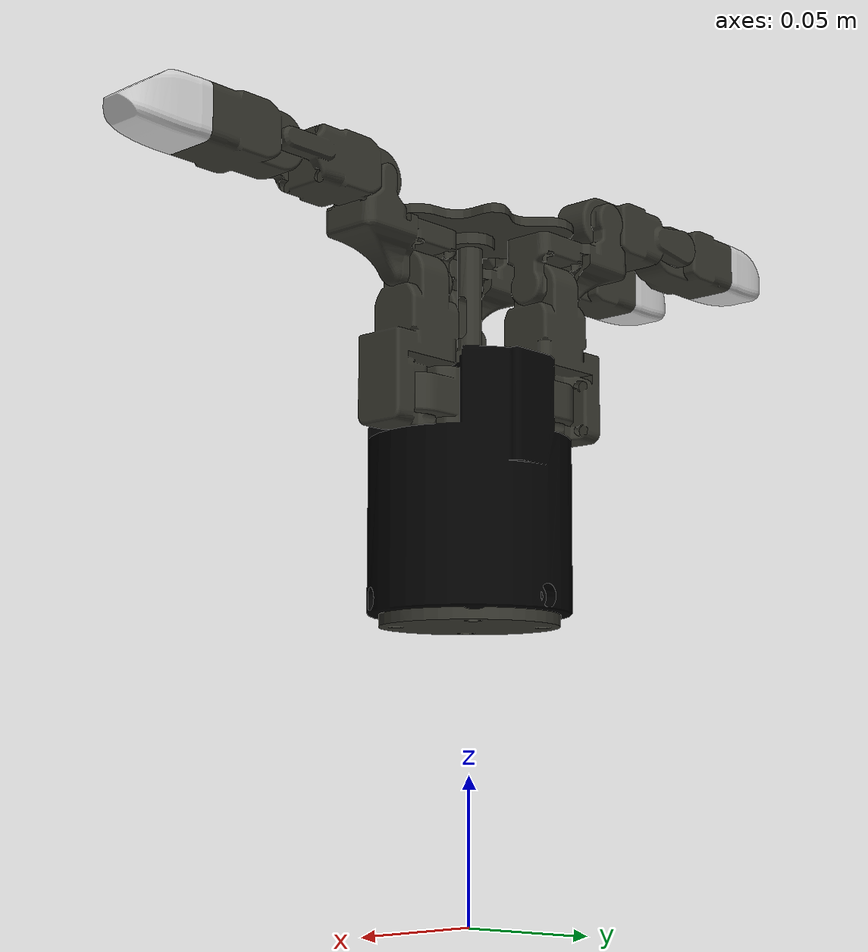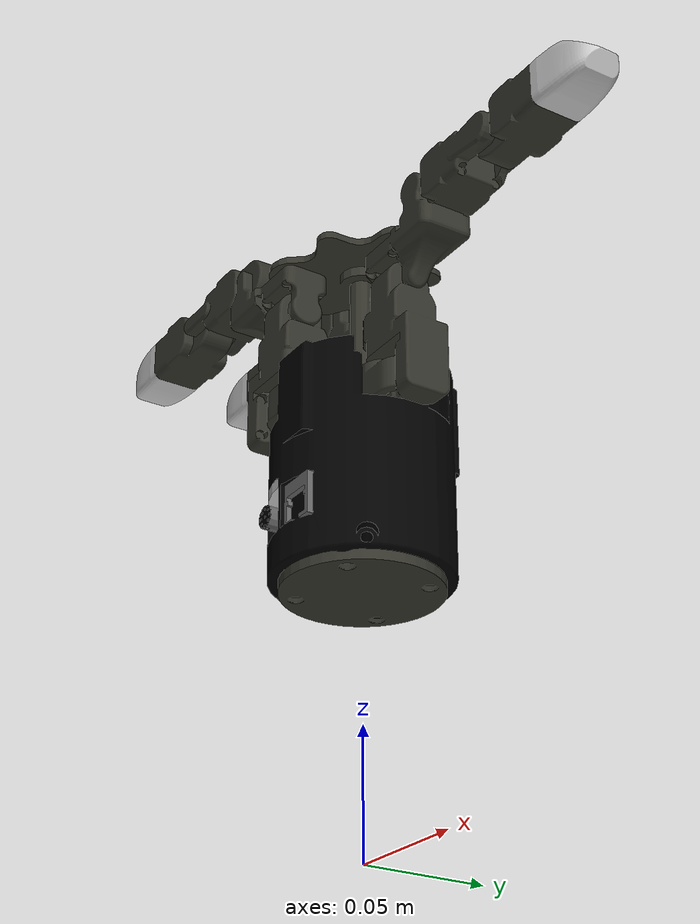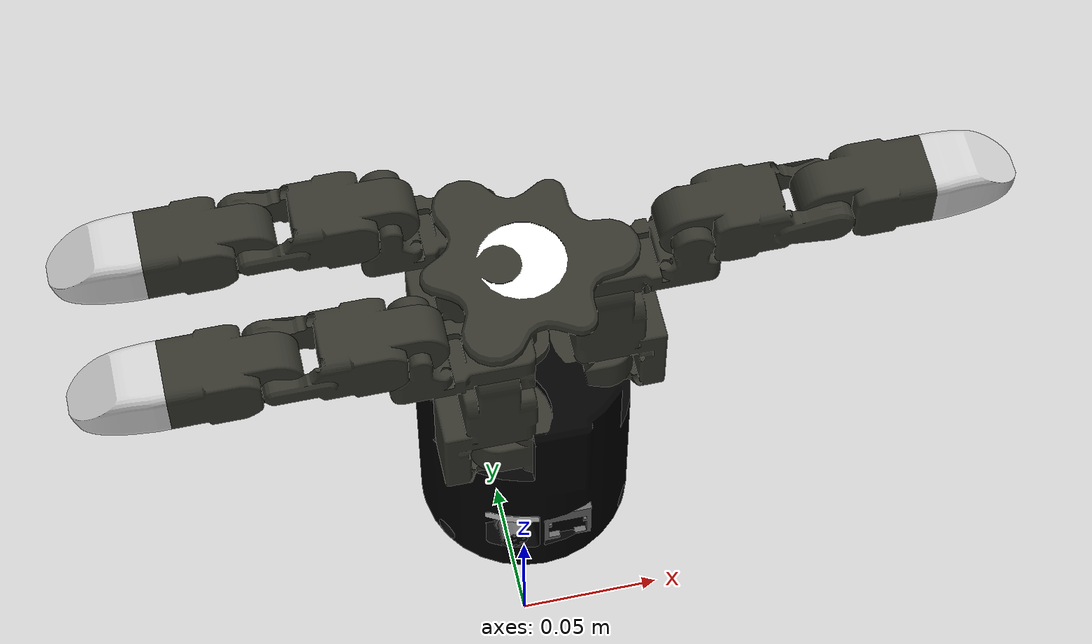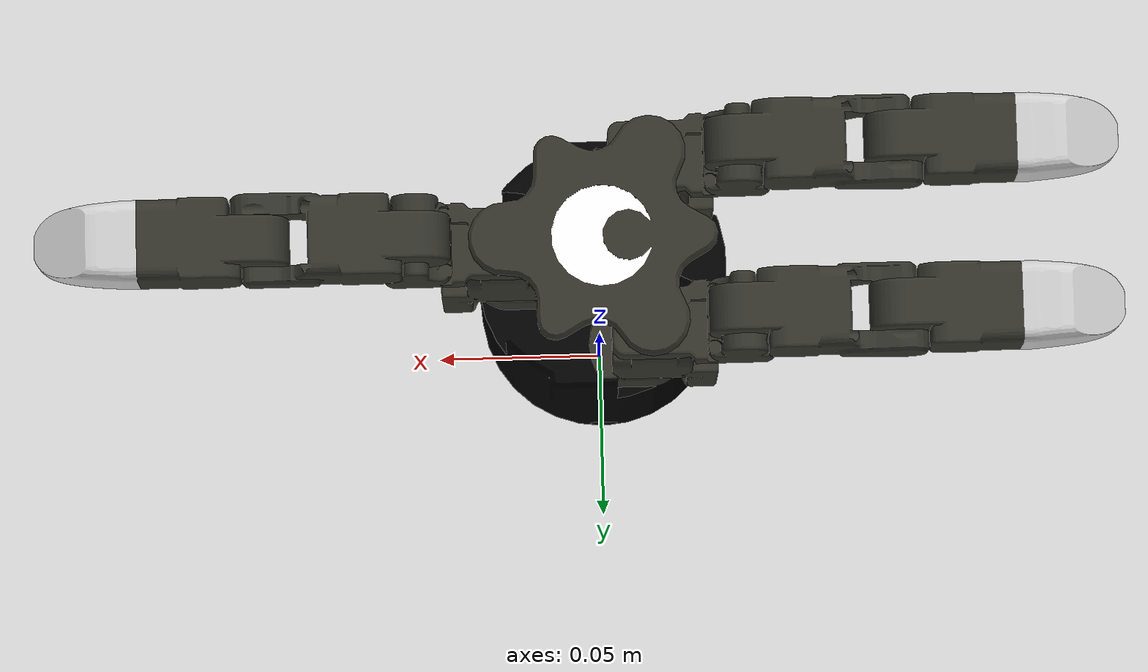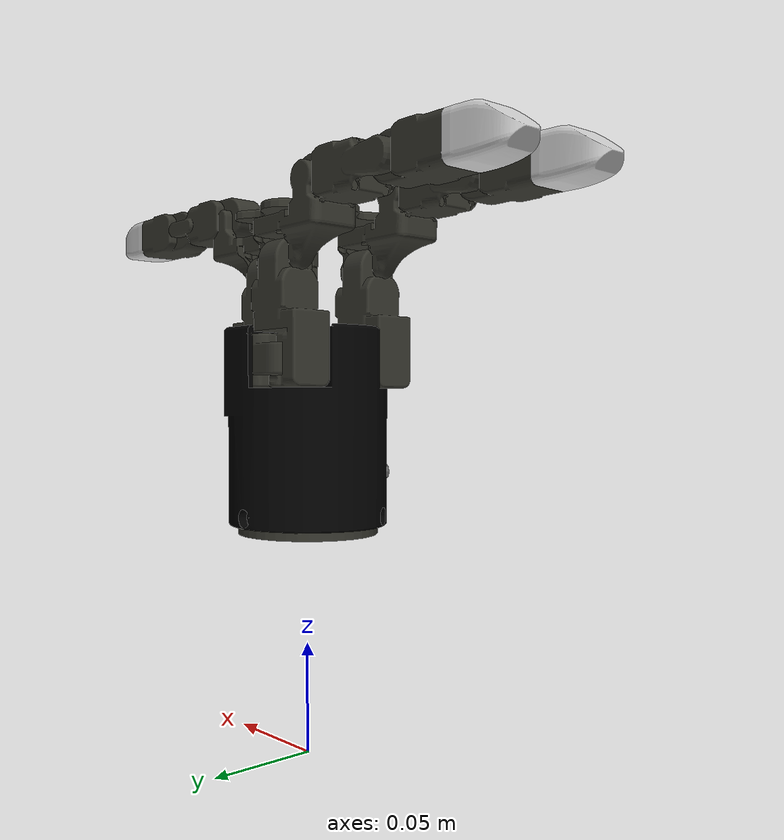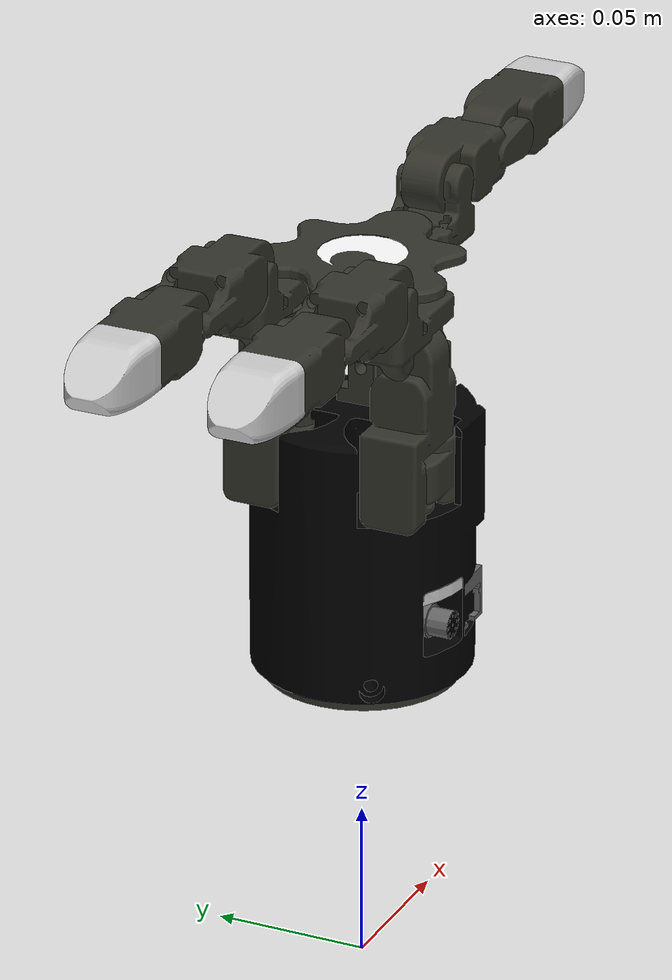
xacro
<?xml version="1.0"?>

<robot name="delto_3f" xmlns:xacro="http://www.ros.org/wiki/xacro">

    <xacro:include filename="$(find dg_description)/urdf/dg3f_m.xacro" />

    <link name="world" />

    <joint name="world_to_base_fixed" type="fixed">
        <parent link="world" />
        <child link="base_link" />
        <origin xyz="0 0 0.1" rpy="0 0 0" />
    </joint>

    <ros2_control name="GazeboSimSystem" type="system">
        <hardware>
            <plugin>ign_ros2_control/IgnitionSystem</plugin>
        </hardware>

        <!-- Finger 1 joints -->
        <joint name="j_dg_1_1">
            <command_interface name="position">
                <param name="min_position">-3.14</param>
                <param name="max_position">3.14</param>
            </command_interface>
            <state_interface name="position">
                <param name="initial_position">0.0</param>
            </state_interface>
            <state_interface name="velocity" />
            <state_interface name="effort" />
        </joint>

        <joint name="j_dg_1_2">
            <command_interface name="position">
                <param name="min_position">-3.14</param>
                <param name="max_position">3.14</param>
            </command_interface>
            <state_interface name="position">
                <param name="initial_position">0.0</param>
            </state_interface>
            <state_interface name="velocity" />
            <state_interface name="effort" />
        </joint>

        <joint name="j_dg_1_3">
            <command_interface name="position">
                <param name="min_position">-3.14</param>
                <param name="max_position">3.14</param>
            </command_interface>
            <state_interface name="position">
                <param name="initial_position">0.0</param>
            </state_interface>
            <state_interface name="velocity" />
            <state_interface name="effort" />
        </joint>

        <joint name="j_dg_1_4">
            <command_interface name="position">
                <param name="min_position">-3.14</param>
                <param name="max_position">3.14</param>
            </command_interface>
            <state_interface name="position">
                <param name="initial_position">0.0</param>
            </state_interface>
            <state_interface name="velocity" />
            <state_interface name="effort" />
        </joint>

        <!-- Finger 2 joints -->
        <joint name="j_dg_2_1">
            <command_interface name="position">
                <param name="min_position">-0.5</param>
                <param name="max_position">0.5</param>
            </command_interface>
            <state_interface name="position">
                <param name="initial_position">0.0</param>
            </state_interface>
            <state_interface name="velocity" />
            <state_interface name="effort" />
        </joint>

        <joint name="j_dg_2_2">
            <command_interface name="position">
                <param name="min_position">-0.5</param>
                <param name="max_position">0.5</param>
            </command_interface>
            <state_interface name="position">
                <param name="initial_position">0.0</param>
            </state_interface>
            <state_interface name="velocity" />
            <state_interface name="effort" />
        </joint>

        <joint name="j_dg_2_3">
            <command_interface name="position">
                <param name="min_position">-0.5</param>
                <param name="max_position">0.5</param>
            </command_interface>
            <state_interface name="position">
                <param name="initial_position">0.0</param>
            </state_interface>
            <state_interface name="velocity" />
            <state_interface name="effort" />
        </joint>

        <joint name="j_dg_2_4">
            <command_interface name="position">
                <param name="min_position">-0.5</param>
                <param name="max_position">0.5</param>
            </command_interface>
            <state_interface name="position">
                <param name="initial_position">0.0</param>
            </state_interface>
            <state_interface name="velocity" />
            <state_interface name="effort" />
        </joint>

        <!-- Finger 3 joints -->
        <joint name="j_dg_3_1">
            <command_interface name="position">
                <param name="min_position">-0.5</param>
                <param name="max_position">0.5</param>
            </command_interface>
            <state_interface name="position">
                <param name="initial_position">0.0</param>
            </state_interface>
            <state_interface name="velocity" />
            <state_interface name="effort" />
        </joint>

        <joint name="j_dg_3_2">
            <command_interface name="position">
                <param name="min_position">-0.5</param>
                <param name="max_position">0.5</param>
            </command_interface>
            <state_interface name="position">
                <param name="initial_position">0.0</param>
            </state_interface>
            <state_interface name="velocity" />
            <state_interface name="effort" />
        </joint>

        <joint name="j_dg_3_3">
            <command_interface name="position">
                <param name="min_position">-0.5</param>
                <param name="max_position">0.5</param>
            </command_interface>
            <state_interface name="position">
                <param name="initial_position">0.0</param>
            </state_interface>
            <state_interface name="velocity" />
            <state_interface name="effort" />
        </joint>

        <joint name="j_dg_3_4">
            <command_interface name="position">
                <param name="min_position">-0.5</param>
                <param name="max_position">0.5</param>
            </command_interface>
            <state_interface name="position">
                <param name="initial_position">0.0</param>
            </state_interface>
            <state_interface name="velocity" />
            <state_interface name="effort" />
        </joint>

    </ros2_control>

    <gazebo>

        <gravity>false</gravity>
        <physics type="dart">  <!-- dart 엔진이 일반적으로 더 빠름 -->
            <max_step_size>0.0</max_step_size>  <!-- 스텝 사이즈 증가 -->
            <real_time_factor>1.0</real_time_factor>
            <real_time_update_rate>250</real_time_update_rate>  <!-- 업데이트 레이트 감소 -->
            <max_contacts>5</max_contacts>  <!-- 접촉점 수 감소 -->

            <!-- 추가 최적화 설정 -->
            <solver>
                <type>quick</type>
                <iters>10</iters>  <!-- 반복 횟수 감소 -->
                <precon_iters>0</precon_iters>
                <sor>1.0</sor>
            </solver>
        </physics>

        <self_collide>0</self_collide>

        <!-- 렌더링 최적화 -->
        <visual>
            <shadows>false</shadows>
            <grid>false</grid>
        </visual>

        <collision_detector>ode</collision_detector>
        <constraints>
            <contact_max_correcting_vel>0.0</contact_max_correcting_vel>
            <cfm>0.0</cfm>
            <erp>0.0</erp>
        </constraints>

        <plugin name="ign_ros2_control::IgnitionROS2ControlPlugin"
            filename="libign_ros2_control-system.so">
            <robot_param_node>robot_state_publisher</robot_param_node>
            <robot_param>robot_description</robot_param>
            <parameters>$(find dg3f_m_gz)/config/dg3f_m_gz_controller.yaml</parameters>
            <ros>
                <namespace>/</namespace>
            </ros>
        </plugin>

    </gazebo>

</robot>

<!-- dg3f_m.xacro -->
<!--
    dg3f_m.urdf
    Licensed under the BSD-3-Clause
    Copyright (c) 2019-2025 Tesollo Inc.
    See LICENSE file for details.

    Reference:
    * https://tesollo.com/dg-3f/
-->

<robot name="dg3f_m">

  <link name="base_link" />

  <joint name="base_joint" type="fixed">
    <origin xyz="0 0 0" rpy="0 0 0" />
    <parent link="base_link" />
    <child link="l_dg_mount" />
  </joint>

  <link name="l_dg_mount">
    <inertial>
      <mass value="0.035" />
    </inertial>
    <visual>
      <geometry>
        <mesh filename="file://$(find dg_description)/meshes/dg3f_m/visual/l_dg_mount.dae"/>
      </geometry>
    </visual>
    <collision>
      <geometry>
        <mesh filename="file://$(find dg_description)/meshes/dg3f_m/collision/l_dg_mount_c.STL"/>
      </geometry>
    </collision>
  </link>
  <link name="l_dg_base">
    <inertial>
      <origin xyz="0.00043337 0.00027389 0.044909" rpy="0 0 0" />
      <mass value="0.451" />
      <inertia ixx="0.00074905" ixy="1.3406E-06" ixz="6.2559E-06" iyy="0.00076541" iyz="3.8906E-06" izz="0.00042544" />
    </inertial>
    <visual>
      <origin xyz="0 0 0" rpy="0 0 0" />
      <geometry>
        <mesh filename="file://$(find dg_description)/meshes/dg3f_m/visual/l_dg_base.dae" />
      </geometry>
    </visual>
    <collision>
      <origin xyz="0 0 0" rpy="0 0 0" />
      <geometry>
        <mesh filename="file://$(find dg_description)/meshes/dg3f_m/collision/l_dg_base_c.STL" />
      </geometry>
    </collision>
  </link>
  <joint name="j_dg_dg_base" type="fixed">
    <parent link="l_dg_mount"/>
    <child link="l_dg_base"/>
    <origin rpy="0 0 0" xyz="0 0 0.004"/>
  </joint>
<!--finger1-->
<link name="l_dg_1_1">
    <inertial>
      <origin xyz="0.0039774 -8.829E-09 0.020057" rpy="0 0 0" />
      <mass value="0.0493" />
      <inertia ixx="1.3247E-05" ixy="1.7768E-12" ixz="2.91E-06" iyy="1.5031E-05" iyz="-6.8008E-12" izz="4.5216E-06" />
    </inertial>
    <visual>
      <origin xyz="0 0 0" rpy="0 0 0" />
      <geometry>
        <mesh filename="file://$(find dg_description)/meshes/dg3f_m/visual/l_1_1.dae" />
      </geometry>
    </visual>
    <collision>
      <origin xyz="0 0 0" rpy="0 0 0" />
      <geometry>
        <mesh filename="file://$(find dg_description)/meshes/dg3f_m/collision/l_1_1_c.STL" />
      </geometry>
    </collision>
  </link>
  <joint name="j_dg_1_1" type="revolute">
    <origin xyz="0.026558 0 0.0712" rpy="0 0 0" />
    <parent link="l_dg_base" />
    <child link="l_dg_1_1" />
    <axis xyz="0 0 1" />
    <limit lower="-1.5707963267948966" upper="1.5707963267948966" effort="7.644" velocity="3.141592653589793" />
  </joint>

  <link name="l_dg_1_2">
    <inertial>
      <origin xyz="0.013085 -0.00032847 0.013274" rpy="0 0 0" />
      <mass value="0.0191" />
      <inertia ixx="2.4921E-06" ixy="1.1229E-07" ixz="-1.0064E-06" iyy="6.5468E-06" iyz="1.5916E-07" izz="6.2269E-06" />
    </inertial>
    <visual>
      <origin xyz="0 0 0" rpy="0 0 0" />
      <geometry>
        <mesh filename="file://$(find dg_description)/meshes/dg3f_m/visual/l_1_2.dae" />
      </geometry>
    </visual>
    <collision>
      <origin xyz="0 0 0" rpy="0 0 0" />
      <geometry>
        <mesh filename="file://$(find dg_description)/meshes/dg3f_m/collision/l_1_2_c.STL" />
      </geometry>
    </collision>
  </link>
  <joint name="j_dg_1_2" type="revolute">
    <origin xyz="0 0 0.0405" rpy="0 0 0" />
    <parent link="l_dg_1_1" />
    <child link="l_dg_1_2" />
    <axis xyz="1 0 0" />
    <limit lower="-1.5707963267948966" upper="1.5707963267948966" effort="7.644" velocity="3.141592653589793" />
  </joint>

  <link name="l_dg_1_3">
    <inertial>
      <origin xyz="0.015926 -0.0001838 -1.5688E-05" rpy="0 0 0" />
      <mass value="0.04535" />
      <inertia ixx="2.7201E-06" ixy="5.68E-07" ixz="1.3288E-08" iyy="7.7224E-06" iyz="-3.8255E-11" izz="8.3935E-06" />
    </inertial>
    <visual>
      <origin xyz="0 0 0" rpy="0 0 0" />
      <geometry>
        <mesh filename="file://$(find dg_description)/meshes/dg3f_m/visual/l_1_3.dae" />
      </geometry>
    </visual>
    <collision>
      <origin xyz="0 0 0" rpy="0 0 0" />
      <geometry>
        <mesh filename="file://$(find dg_description)/meshes/dg3f_m/collision/l_1_3_c.STL" />
      </geometry>
    </collision>
  </link>
  <joint name="j_dg_1_3" type="revolute">
    <origin xyz="0.0242 0 0.029" rpy="0 0 0" />
    <parent link="l_dg_1_2" />
    <child link="l_dg_1_3" />
    <axis xyz="0 -1 0" />
    <limit lower="-0.0" upper="2.8099800957108707" effort="7.644" velocity="3.141592653589793" />
  </joint>

  <link name="l_dg_1_4">
    <inertial>
      <origin xyz="0.013887 0.00026201 -4.6519E-10" rpy="0 0 0" />
      <mass value="0.0408" />
      <inertia ixx="2.3785E-06" ixy="7.7437E-08" ixz="-4.9155E-14" iyy="3.5656E-06" iyz="1.1628E-12" izz="3.8056E-06" />
    </inertial>
    <visual>
      <origin xyz="0 0 0" rpy="0 0 0" />
      <geometry>
        <mesh filename="file://$(find dg_description)/meshes/dg3f_m/visual/l_1_4.dae" />
      </geometry>
    </visual>
    <collision>
      <origin xyz="0 0 0" rpy="0 0 0" />
      <geometry>
        <mesh filename="file://$(find dg_description)/meshes/dg3f_m/collision/l_1_4_c.STL" />
      </geometry>
    </collision>
  </link>
  <joint name="j_dg_1_4" type="revolute">
    <origin xyz="0.0434 0 0" rpy="0 0 0" />
    <parent link="l_dg_1_3" />
    <child link="l_dg_1_4" />
    <axis xyz="0 -1 0" />
    <limit lower="-1.5707963267948966" upper="1.8675022996339325" effort="7.644" velocity="3.141592653589793" />
  </joint>

  <link name="l_dg_1_tip">
    <inertial>
      <origin xyz="0.010984 -8.1442E-09 -0.00048894" rpy="0 0 0" />
      <mass value="0.0172" />
      <inertia ixx="1.1855E-06" ixy="5.5892E-12" ixz="9.3654E-08" iyy="1.439E-06" iyz="-1.6025E-11" izz="1.6355E-06" />
    </inertial>
    <visual>
      <origin xyz="0 0 0" rpy="0 0 0" />
      <geometry>
        <mesh filename="file://$(find dg_description)/meshes/dg3f_m/visual/l_1_tip.dae" />
      </geometry>
    </visual>
    <collision>
      <origin xyz="0 0 0" rpy="0 0 0" />
      <geometry>
        <mesh filename="file://$(find dg_description)/meshes/dg3f_m/collision/l_1_tip_c.STL" />
      </geometry>
    </collision>
  </link>
  <joint name="j_dg_1_tip" type="fixed">
    <origin xyz="0.0313 0 0" rpy="0 0 0" />
    <parent link="l_dg_1_4" />
    <child link="l_dg_1_tip" />
  </joint>
  <!--finger2-->
  <link name="l_dg_2_1">
    <inertial>
      <origin xyz="-0.0039774 8.829E-09 0.020057" rpy="0 0 0" />
      <mass value="0.0493" />
      <inertia ixx="1.3247E-05" ixy="1.7768E-12" ixz="-2.91E-06" iyy="1.5031E-05" iyz="6.8008E-12" izz="4.5216E-06" />
    </inertial>
    <visual>
      <origin xyz="0 0 0" rpy="0 0 0" />
      <geometry>
        <mesh filename="file://$(find dg_description)/meshes/dg3f_m/visual/l_23_1.dae" />
      </geometry>
    </visual>
    <collision>
      <origin xyz="0 0 0" rpy="0 0 0" />
      <geometry>
        <mesh filename="file://$(find dg_description)/meshes/dg3f_m/collision/l_23_1_c.STL" />
      </geometry>
    </collision>
  </link>
  <joint name="j_dg_2_1" type="revolute">
    <origin xyz="-0.013279 0.023 0.0712" rpy="0 0 0" />
    <parent link="l_dg_base" />
    <child link="l_dg_2_1" />
    <axis xyz="0 0 1" />
    <limit lower="-2.129301687433082" upper="1.5707963267948966" effort="7.644" velocity="3.141592653589793" />
  </joint>

  <link name="l_dg_2_2">
    <inertial>
      <origin xyz="-0.013085 0.00032847 0.013274" rpy="0 0 0" />
      <mass value="0.0191" />
      <inertia ixx="2.4921E-06" ixy="1.1229E-07" ixz="1.0064E-06" iyy="6.5468E-06" iyz="-1.5916E-07" izz="6.2269E-06" />
    </inertial>
    <visual>
      <origin xyz="0 0 0" rpy="0 0 0" />
      <geometry>
        <mesh filename="file://$(find dg_description)/meshes/dg3f_m/visual/l_23_2.dae" />
      </geometry>
    </visual>
    <collision>
      <origin xyz="0 0 0" rpy="0 0 0" />
      <geometry>
        <mesh filename="file://$(find dg_description)/meshes/dg3f_m/collision/l_23_2_c.STL" />
      </geometry>
    </collision>
  </link>
  <joint name="j_dg_2_2" type="revolute">
    <origin xyz="0 0 0.0405" rpy="0 0 0" />
    <parent link="l_dg_2_1" />
    <child link="l_dg_2_2" />
    <axis xyz="-1 0 0" />
    <limit lower="-1.5707963267948966" upper="1.5707963267948966" effort="7.644" velocity="3.141592653589793" />
  </joint>

  <link name="l_dg_2_3">
    <inertial>
      <origin xyz="-0.0159258962872331 0.000183796044363631 -1.56883420763254E-05" rpy="0 0 0" />
      <mass value="0.04535" />
      <inertia ixx="2.72014634088682E-06" ixy="5.67998480575708E-07" ixz="-1.32884157040829E-08" iyy="7.72244376203872E-06" iyz="3.82553595666275E-11" izz="8.39345564298784E-06" />
    </inertial>
    <visual>
      <origin xyz="0 0 0" rpy="0 0 0" />
      <geometry>
        <mesh filename="file://$(find dg_description)/meshes/dg3f_m/visual/l_23_3.dae" />
      </geometry>
    </visual>
    <collision>
      <origin xyz="0 0 0" rpy="0 0 0" />
      <geometry>
        <mesh filename="file://$(find dg_description)/meshes/dg3f_m/collision/l_23_3_c.STL" />
      </geometry>
    </collision>
  </link>
  <joint name="j_dg_2_3" type="revolute">
    <origin xyz="-0.0242 0 0.029" rpy="0 0 0" />
    <parent link="l_dg_2_2" />
    <child link="l_dg_2_3" />
    <axis xyz="0 1 0" />
    <limit lower="-0.0" upper="2.8099800957108707" effort="7.644" velocity="3.141592653589793" />
  </joint>

  <link name="l_dg_2_4">
    <inertial>
      <origin xyz="-0.013887 -0.00026201 -4.6519E-10" rpy="0 0 0" />
      <mass value="0.0408" />
      <inertia ixx="2.3785E-06" ixy="7.7437E-08" ixz="4.9155E-14" iyy="3.5656E-06" iyz="-1.1628E-12" izz="3.8056E-06" />
    </inertial>
    <visual>
      <origin xyz="0 0 0" rpy="0 0 0" />
      <geometry>
        <mesh filename="file://$(find dg_description)/meshes/dg3f_m/visual/l_23_4.dae" />
      </geometry>
    </visual>
    <collision>
      <origin xyz="0 0 0" rpy="0 0 0" />
      <geometry>
        <mesh filename="file://$(find dg_description)/meshes/dg3f_m/collision/l_23_4_c.STL" />
      </geometry>
    </collision>
  </link>
  <joint name="j_dg_2_4" type="revolute">
    <origin xyz="-0.0434 0 0" rpy="0 0 0" />
    <parent link="l_dg_2_3" />
    <child link="l_dg_2_4" />
    <axis xyz="0 1 0" />
    <limit lower="-1.5707963267948966" upper="1.8675022996339325" effort="7.644" velocity="3.141592653589793" />
  </joint>

  <link name="l_dg_2_tip">
    <inertial>
      <origin xyz="-0.010984 -1.7412E-08 -0.00048893" rpy="0 0 0" />
      <mass value="0.0172" />
      <inertia ixx="1.1855E-06" ixy="-2.6029E-12" ixz="-9.3657E-08" iyy="1.439E-06" iyz="1.8278E-11" izz="1.6355E-06" />
    </inertial>
    <visual>
      <origin xyz="0 0 0" rpy="0 0 0" />
      <geometry>
        <mesh filename="file://$(find dg_description)/meshes/dg3f_m/visual/l_23_tip.dae" />
      </geometry>
    </visual>
    <collision>
      <origin xyz="0 0 0" rpy="0 0 0" />
      <geometry>
        <mesh filename="file://$(find dg_description)/meshes/dg3f_m/collision/l_23_tip_c.STL" />
      </geometry>
    </collision>
  </link>
  <joint name="j_dg_2_tip" type="fixed">
    <origin xyz="-0.0313 0 0" rpy="0 0 0" />
    <parent link="l_dg_2_4" />
    <child link="l_dg_2_tip" />
  </joint>
  <!--finger3-->
  <link name="l_dg_3_1">
    <inertial>
      <origin xyz="-0.0039774 8.829E-09 0.020057" rpy="0 0 0" />
      <mass value="0.0493" />
      <inertia ixx="1.3247E-05" ixy="1.7768E-12" ixz="-2.91E-06" iyy="1.5031E-05" iyz="6.8008E-12" izz="4.5216E-06" />
    </inertial>
    <visual>
      <origin xyz="0 0 0" rpy="0 0 0" />
      <geometry>
        <mesh filename="file://$(find dg_description)/meshes/dg3f_m/visual/l_23_1.dae" />
      </geometry>
    </visual>
    <collision>
      <origin xyz="0 0 0" rpy="0 0 0" />
      <geometry>
        <mesh filename="file://$(find dg_description)/meshes/dg3f_m/collision/l_23_1_c.STL" />
      </geometry>
    </collision>
  </link>
  <joint name="j_dg_3_1" type="revolute">
    <origin xyz="-0.013279 -0.023 0.0712" rpy="0 0 0" />
    <parent link="l_dg_base" />
    <child link="l_dg_3_1" />
    <axis xyz="0 0 1" />
    <limit lower="-1.5707963267948966" upper="2.129301687433082" effort="7.644" velocity="3.141592653589793" />
  </joint>

  <link name="l_dg_3_2">
    <inertial>
      <origin xyz="-0.013085 0.00032847 0.013274" rpy="0 0 0" />
      <mass value="0.0191" />
      <inertia ixx="2.4921E-06" ixy="1.1229E-07" ixz="1.0064E-06" iyy="6.5468E-06" iyz="-1.5916E-07" izz="6.2269E-06" />
    </inertial>
    <visual>
      <origin xyz="0 0 0" rpy="0 0 0" />
      <geometry>
        <mesh filename="file://$(find dg_description)/meshes/dg3f_m/visual/l_23_2.dae" />
      </geometry>
    </visual>
    <collision>
      <origin xyz="0 0 0" rpy="0 0 0" />
      <geometry>
        <mesh filename="file://$(find dg_description)/meshes/dg3f_m/collision/l_23_2_c.STL" />
      </geometry>
    </collision>
  </link>
  <joint name="j_dg_3_2" type="revolute">
    <origin xyz="0 0 0.0405" rpy="0 0 0" />
    <parent link="l_dg_3_1" />
    <child link="l_dg_3_2" />
    <axis xyz="-1 0 0" />
    <limit lower="-1.5707963267948966" upper="1.5707963267948966" effort="7.644" velocity="3.141592653589793" />
  </joint>

  <link name="l_dg_3_3">
    <inertial>
      <origin xyz="-0.0159258962872331 0.000183796044363631 -1.56883420763254E-05" rpy="0 0 0" />
      <mass value="0.04535" />
      <inertia ixx="2.72014634088682E-06" ixy="5.67998480575708E-07" ixz="-1.32884157040829E-08" iyy="7.72244376203872E-06" iyz="3.82553595666275E-11" izz="8.39345564298784E-06" />
    </inertial>
    <visual>
      <origin xyz="0 0 0" rpy="0 0 0" />
      <geometry>
        <mesh filename="file://$(find dg_description)/meshes/dg3f_m/visual/l_23_3.dae" />
      </geometry>
    </visual>
    <collision>
      <origin xyz="0 0 0" rpy="0 0 0" />
      <geometry>
        <mesh filename="file://$(find dg_description)/meshes/dg3f_m/collision/l_23_3_c.STL" />
      </geometry>
    </collision>
  </link>
  <joint name="j_dg_3_3" type="revolute">
    <origin xyz="-0.0242 0 0.029" rpy="0 0 0" />
    <parent link="l_dg_3_2" />
    <child link="l_dg_3_3" />
    <axis xyz="0 1 0" />
    <limit lower="-0.0" upper="2.8099800957108707" effort="7.644" velocity="3.141592653589793" />
  </joint>

  <link name="l_dg_3_4">
    <inertial>
      <origin xyz="-0.013887 -0.00026201 -4.6519E-10" rpy="0 0 0" />
      <mass value="0.0408" />
      <inertia ixx="2.3785E-06" ixy="7.7437E-08" ixz="4.9155E-14" iyy="3.5656E-06" iyz="-1.1628E-12" izz="3.8056E-06" />
    </inertial>
    <visual>
      <origin xyz="0 0 0" rpy="0 0 0" />
      <geometry>
        <mesh filename="file://$(find dg_description)/meshes/dg3f_m/visual/l_23_4.dae" />
      </geometry>
    </visual>
    <collision>
      <origin xyz="0 0 0" rpy="0 0 0" />
      <geometry>
        <mesh filename="file://$(find dg_description)/meshes/dg3f_m/collision/l_23_4_c.STL" />
      </geometry>
    </collision>
  </link>
  <joint name="j_dg_3_4" type="revolute">
    <origin xyz="-0.0434 0 0" rpy="0 0 0" />
    <parent link="l_dg_3_3" />
    <child link="l_dg_3_4" />
    <axis xyz="0 1 0" />
    <limit lower="-1.5707963267948966" upper="1.8675022996339325" effort="7.644" velocity="3.141592653589793" />
  </joint>

  <link name="l_dg_3_tip">
    <inertial>
      <origin xyz="-0.010984 -1.7412E-08 -0.00048893" rpy="0 0 0" />
      <mass value="0.0172" />
      <inertia ixx="1.1855E-06" ixy="-2.6029E-12" ixz="-9.3657E-08" iyy="1.439E-06" iyz="1.8278E-11" izz="1.6355E-06" />
    </inertial>
    <visual>
      <origin xyz="0 0 0" rpy="0 0 0" />
      <geometry>
        <mesh filename="file://$(find dg_description)/meshes/dg3f_m/visual/l_23_tip.dae" />
      </geometry>
    </visual>
    <collision>
      <origin xyz="0 0 0" rpy="0 0 0" />
      <geometry>
        <mesh filename="file://$(find dg_description)/meshes/dg3f_m/collision/l_23_tip_c.STL" />
      </geometry>
    </collision>
  </link>
  <joint name="j_dg_3_tip" type="fixed">
    <origin xyz="-0.0313 0 0" rpy="0 0 0" />
    <parent link="l_dg_3_4" />
    <child link="l_dg_3_tip" />
  </joint>
</robot>
